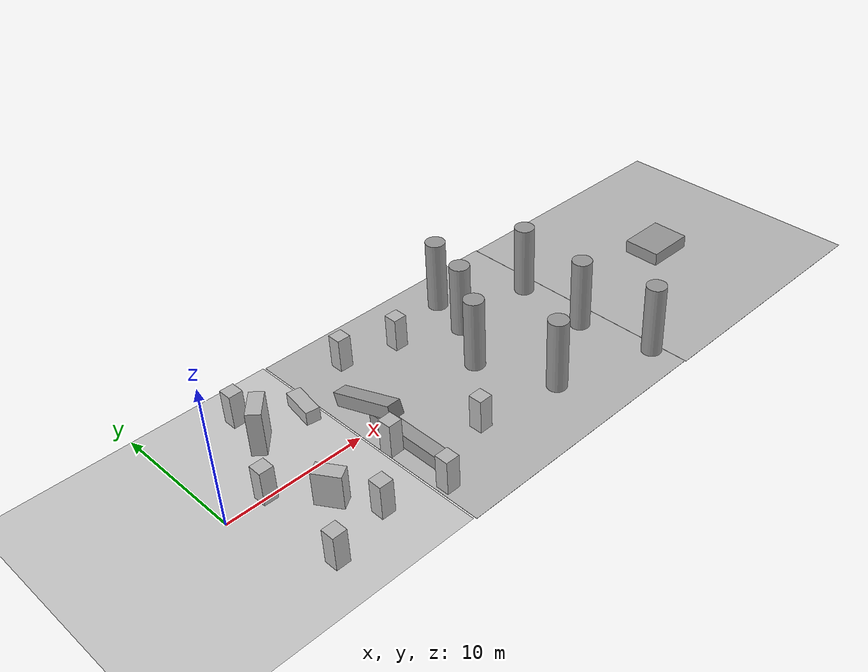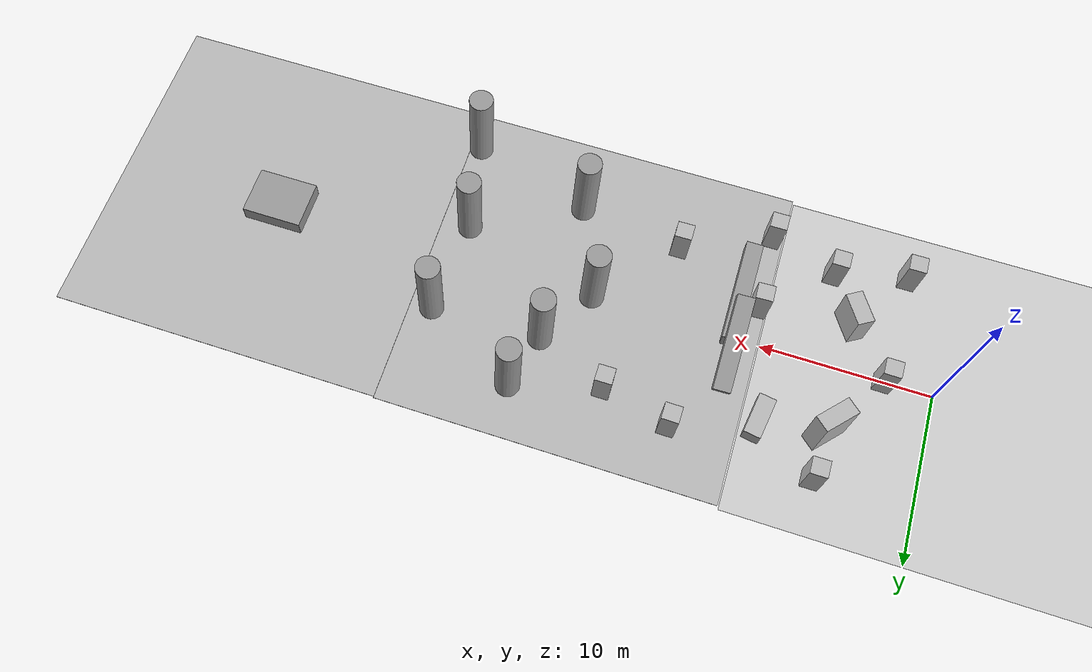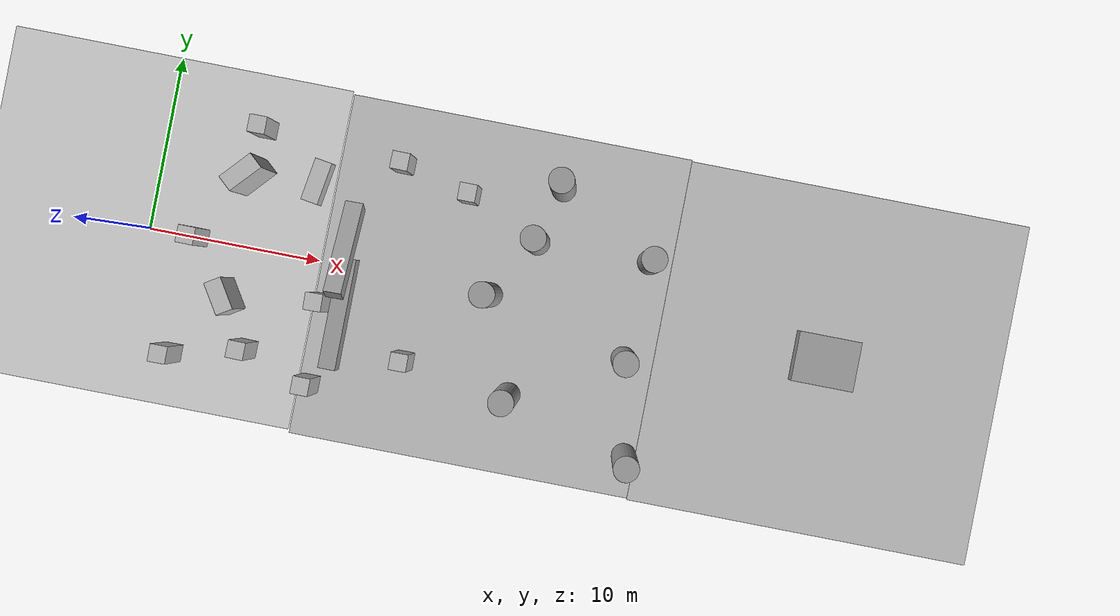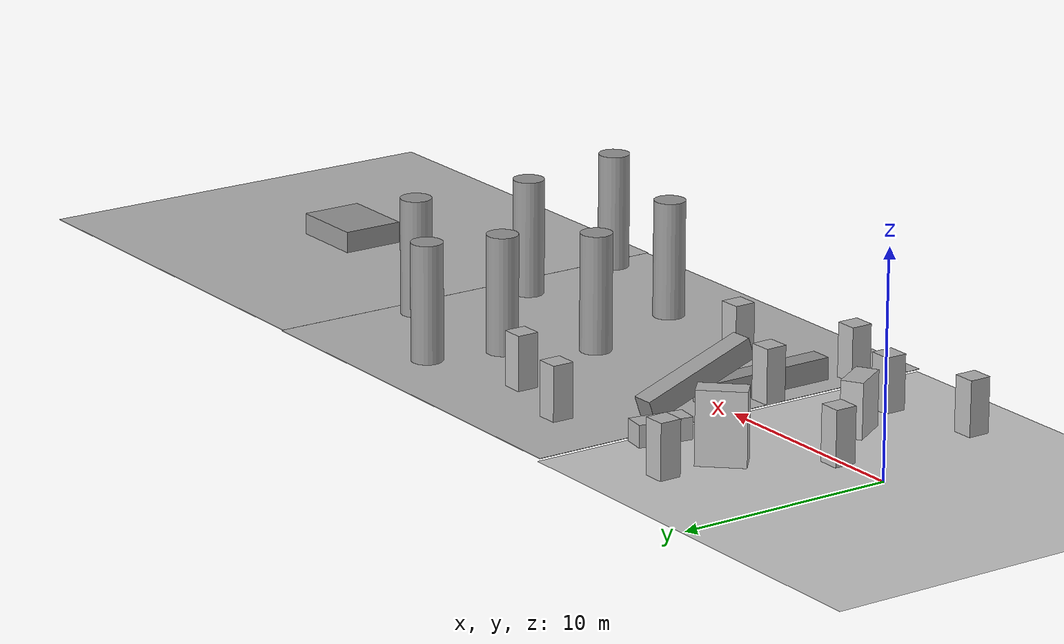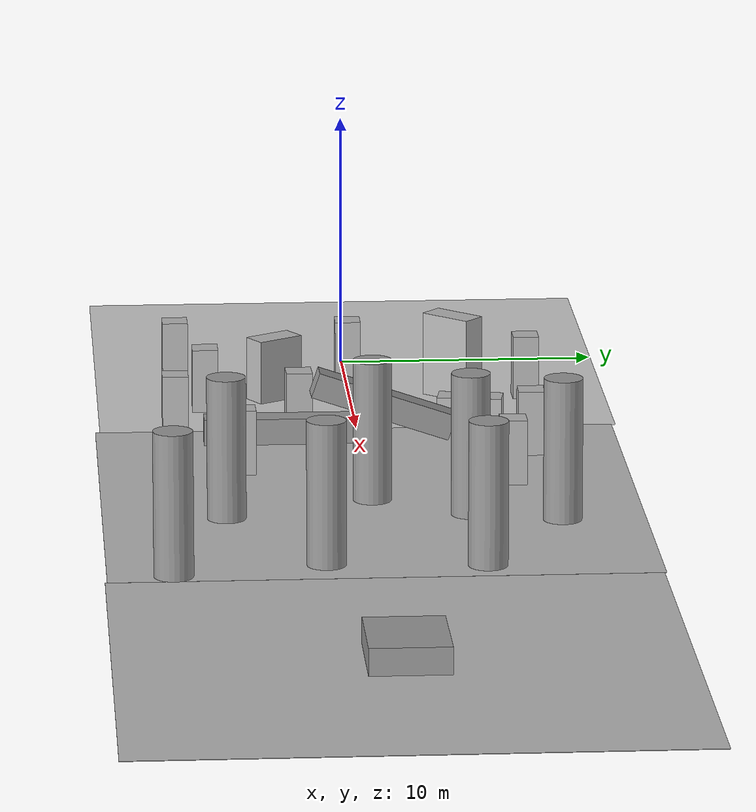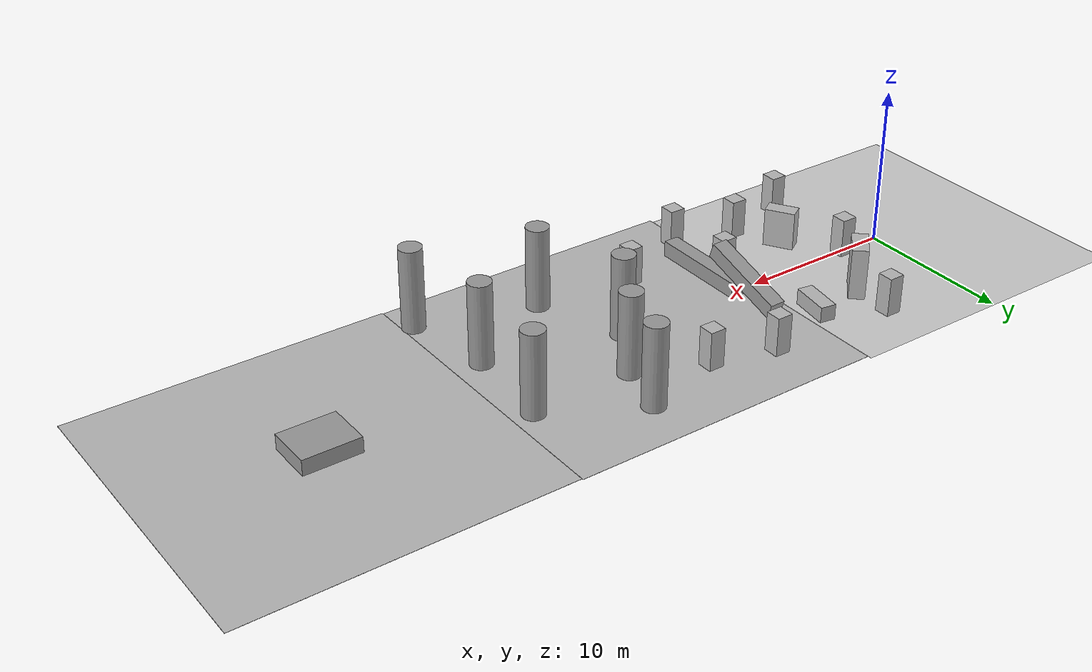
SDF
<sdf version="1.6">
 <world name="default">
  <light name="sun" type="directional">
   <pose>0 0 10 0 -0 0</pose>
   <diffuse>0.8 0.8 0.8 1</diffuse>
   <specular>0.2 0.2 0.2 1</specular>
   <attenuation>
    <range>1000</range>
    <constant>0.9</constant>
    <linear>0.01</linear>
    <quadratic>0.001</quadratic>
   </attenuation>
   <direction>-0.5 0.1 -0.9</direction>
  </light>
  <gravity>0 0 -9.8</gravity>
  <magnetic_field>6e-06 2.3e-05 -4.2e-05</magnetic_field>
  <atmosphere type="adiabatic"/>
  <physics name="default_physics" default="0" type="ode">
   <max_step_size>0.001</max_step_size>
   <real_time_factor>1</real_time_factor>
   <real_time_update_rate>1000</real_time_update_rate>
  </physics>
  <scene><ambient>0.4 0.4 0.4 1</ambient><background>0.7 0.7 0.7 1</background><shadows>1</shadows></scene>
  <audio><device>default</device></audio>
  <spherical_coordinates>
   <surface_model>EARTH_WGS84</surface_model>
   <latitude_deg>0</latitude_deg>
   <longitude_deg>0</longitude_deg>
   <elevation>0</elevation>
   <heading_deg>0</heading_deg>
  </spherical_coordinates>
  <model name="unit_box">
   <pose>9.16142 4.48585 0.499995 -1.5708 9e-06 -0.1566</pose>
   <link name="link">
    <inertial>
     <mass>1</mass>
     <inertia>
      <ixx>0.166667</ixx>
      <ixy>0</ixy>
      <ixz>0</ixz>
      <iyy>0.166667</iyy>
      <iyz>0</iyz>
      <izz>0.166667</izz>
     </inertia>
    </inertial>
    <collision name="collision"><geometry><box><size>1 1 2.5</size></box></geometry></collision>
    <visual name="visual">
     <geometry><box><size>1 1 2.5</size></box></geometry>
     <material>
      <script>
       <uri>file://media/materials/scripts/wallpaper.material</uri>
       <name>wallpaper/wallpaper24</name>
      </script>
     </material>
    </visual>
   </link>
  </model>
  <model name="unit_box_0">
   <pose>17.9589 5.41519 1.25 -1e-06 -0 0.000523</pose>
   <link name="link">
    <inertial>
     <mass>1</mass>
     <inertia>
      <ixx>0.166667</ixx>
      <ixy>0</ixy>
      <ixz>0</ixz>
      <iyy>0.166667</iyy>
      <iyz>0</iyz>
      <izz>0.166667</izz>
     </inertia>
    </inertial>
    <collision name="collision"><geometry><box><size>1 1 2.5</size></box></geometry></collision>
    <visual name="visual">
     <geometry><box><size>1 1 2.5</size></box></geometry>
     <material>
      <script>
       <uri>file://media/materials/scripts/wallpaper.material</uri>
       <name>wallpaper/wallpaper20</name>
      </script>
     </material>
    </visual>
   </link>
  </model>
  <model name="unit_box_2">
   <pose>15.9696 -4.65977 1.25 -1e-06 -1e-06 0.010237</pose>
   <link name="link">
    <inertial>
     <mass>1</mass>
     <inertia>
      <ixx>0.166667</ixx>
      <ixy>0</ixy>
      <ixz>0</ixz>
      <iyy>0.166667</iyy>
      <iyz>0</iyz>
      <izz>0.166667</izz>
     </inertia>
    </inertial>
    <collision name="collision"><geometry><box><size>1 1 2.5</size></box></geometry></collision>
    <visual name="visual">
     <geometry><box><size>1 1 2.5</size></box></geometry>
     <material>
      <script>
       <uri>file://media/materials/scripts/wallpaper.material</uri>
       <name>wallpaper/wallpaper28</name>
      </script>
     </material>
    </visual>
   </link>
  </model>
  <model name="unit_box_3">
   <pose>5.49743 4.06502 1.64767 2e-06 -0 -0.738651</pose>
   <link name="link">
    <inertial>
     <mass>1</mass>
     <inertia>
      <ixx>0.166667</ixx>
      <ixy>0</ixy>
      <ixz>0</ixz>
      <iyy>0.166667</iyy>
      <iyz>0</iyz>
      <izz>0.166667</izz>
     </inertia>
    </inertial>
    <collision name="collision"><geometry><box><size>1 2.17259 3.29535</size></box></geometry></collision>
    <visual name="visual">
     <geometry><box><size>1 2.17259 3.29535</size></box></geometry>
     <material>
      <script>
       <uri>file://media/materials/scripts/wallpaper.material</uri>
       <name>wallpaper/wallpaper18</name>
      </script>
     </material>
    </visual>
   </link>
  </model>
  <model name="unit_box_4">
   <pose>10.8278 -7.02763 1.25 -1e-06 0 -0.00394</pose>
   <link name="link">
    <inertial>
     <mass>1</mass>
     <inertia>
      <ixx>0.166667</ixx>
      <ixy>0</ixy>
      <ixz>0</ixz>
      <iyy>0.166667</iyy>
      <iyz>0</iyz>
      <izz>0.166667</izz>
     </inertia>
    </inertial>
    <collision name="collision"><geometry><box><size>1 1 2.5</size></box></geometry></collision>
    <visual name="visual">
     <geometry><box><size>1 1 2.5</size></box></geometry>
     <material>
      <script>
       <uri>file://media/materials/scripts/wallpaper.material</uri>
       <name>wallpaper/wallpaper17</name>
      </script>
     </material>
    </visual>
   </link>
  </model>
  <model name="unit_box_5">
   <pose>2.64178 -6.77712 1.25 2e-06 2e-06 0.003193</pose>
   <link name="link">
    <inertial>
     <mass>1</mass>
     <inertia>
      <ixx>0.166667</ixx>
      <ixy>0</ixy>
      <ixz>0</ixz>
      <iyy>0.166667</iyy>
      <iyz>0</iyz>
      <izz>0.166667</izz>
     </inertia>
    </inertial>
    <collision name="collision"><geometry><box><size>1 1 2.5</size></box></geometry></collision>
    <visual name="visual">
     <geometry><box><size>1 1 2.5</size></box></geometry>
     <material>
      <script>
       <uri>file://media/materials/scripts/wallpaper.material</uri>
       <name>wallpaper/wallpaper16</name>
      </script>
     </material>
    </visual>
   </link>
  </model>
  <model name="unit_box_6">
   <pose>5.36073 -2.95743 1.25 -1e-06 -0 0.554817</pose>
   <link name="link">
    <inertial>
     <mass>1</mass>
     <inertia>
      <ixx>0.166667</ixx>
      <ixy>0</ixy>
      <ixz>0</ixz>
      <iyy>0.166667</iyy>
      <iyz>0</iyz>
      <izz>0.166667</izz>
     </inertia>
    </inertial>
    <collision name="collision"><geometry><box><size>1 1.92239 2.5</size></box></geometry></collision>
    <visual name="visual">
     <geometry><box><size>1 1.92239 2.5</size></box></geometry>
     <material>
      <script>
       <uri>file://media/materials/scripts/wallpaper.material</uri>
       <name>wallpaper/wallpaper15</name>
      </script>
     </material>
    </visual>
   </link>
  </model>
  <model name="unit_box_7">
   <pose>6.8876 -5.73587 1.25 -1e-06 -0 -0.011149</pose>
   <link name="link">
    <inertial>
     <mass>1</mass>
     <inertia>
      <ixx>0.166667</ixx>
      <ixy>0</ixy>
      <ixz>0</ixz>
      <iyy>0.166667</iyy>
      <iyz>0</iyz>
      <izz>0.166667</izz>
     </inertia>
    </inertial>
    <collision name="collision"><geometry><box><size>1 1 2.5</size></box></geometry></collision>
    <visual name="visual">
     <geometry><box><size>1 1 2.5</size></box></geometry>
     <material>
      <script>
       <uri>file://media/materials/scripts/wallpaper.material</uri>
       <name>wallpaper/wallpaper14</name>
      </script>
     </material>
    </visual>
   </link>
  </model>
  <model name="unit_box_8">
   <pose>13.9139 6.4271 1.25 1e-06 -1e-06 -0.011625</pose>
   <link name="link">
    <inertial>
     <mass>1</mass>
     <inertia>
      <ixx>0.166667</ixx>
      <ixy>0</ixy>
      <ixz>0</ixz>
      <iyy>0.166667</iyy>
      <iyz>0</iyz>
      <izz>0.166667</izz>
     </inertia>
    </inertial>
    <collision name="collision"><geometry><box><size>1 1 2.5</size></box></geometry></collision>
    <visual name="visual">
     <geometry><box><size>1 1 2.5</size></box></geometry>
     <material>
      <script><uri>file://media/materials/scripts/wallpaper.material</uri><name>wallpaper/wallpaper6</name></script>
     </material>
    </visual>
   </link>
  </model>
  <model name="unit_box_9">
   <pose>5.66697 6.91712 1.25 -3e-06 0 0.002152</pose>
   <link name="link">
    <inertial>
     <mass>1</mass>
     <inertia>
      <ixx>0.166667</ixx>
      <ixy>0</ixy>
      <ixz>0</ixz>
      <iyy>0.166667</iyy>
      <iyz>0</iyz>
      <izz>0.166667</izz>
     </inertia>
    </inertial>
    <collision name="collision"><geometry><box><size>1 1 2.5</size></box></geometry></collision>
    <visual name="visual">
     <geometry><box><size>1 1 2.5</size></box></geometry>
     <material>
      <script>
       <uri>file://media/materials/scripts/wallpaper.material</uri>
       <name>wallpaper/wallpaper10</name>
      </script>
     </material>
    </visual>
   </link>
  </model>
  <model name="unit_box_10">
   <pose>2.90703 0.070606 1.25 0 1e-06 -0.009028</pose>
   <link name="link">
    <inertial>
     <mass>1</mass>
     <inertia>
      <ixx>0.166667</ixx>
      <ixy>0</ixy>
      <ixz>0</ixz>
      <iyy>0.166667</iyy>
      <iyz>0</iyz>
      <izz>0.166667</izz>
     </inertia>
    </inertial>
    <collision name="collision"><geometry><box><size>1 1 2.5</size></box></geometry></collision>
    <visual name="visual">
     <geometry><box><size>1 1 2.5</size></box></geometry>
     <material>
      <script>
       <uri>file://media/materials/scripts/wallpaper.material</uri>
       <name>wallpaper/wallpaper26</name>
      </script>
     </material>
    </visual>
   </link>
  </model>
  <model name="unit_box_11">
   <pose>10.6345 -2.26069 1.25 0 -0 0.026313</pose>
   <link name="link">
    <inertial>
     <mass>1</mass>
     <inertia>
      <ixx>0.166667</ixx>
      <ixy>0</ixy>
      <ixz>0</ixz>
      <iyy>0.166667</iyy>
      <iyz>0</iyz>
      <izz>0.166667</izz>
     </inertia>
    </inertial>
    <collision name="collision"><geometry><box><size>1 1 2.5</size></box></geometry></collision>
    <visual name="visual">
     <geometry><box><size>1 1 2.5</size></box></geometry>
     <material>
      <script>
       <uri>file://media/materials/scripts/wallpaper.material</uri>
       <name>wallpaper/wallpaper25</name>
      </script>
     </material>
    </visual>
   </link>
  </model>
  <model name="ground20x60">
   <model name="my_ground_plane">
    <static>1</static>
    <link name="link">
     <collision name="collision">
      <geometry><plane><normal>0 0 1</normal><size>20 20</size></plane></geometry>
      <surface><friction><ode><mu>100</mu><mu2>50</mu2></ode></friction></surface>
     </collision>
     <visual name="visual">
      <cast_shadows>0</cast_shadows>
      <geometry><plane><normal>0 0 1</normal><size>20 20</size></plane></geometry>
      <material>
       <script>
        <uri>model://ground20x20/materials/scripts</uri>
        <uri>model://ground20x20/materials/textures</uri>
        <name>WoodGround/Image</name>
       </script>
      </material>
     </visual>
    </link>
    <pose>-20.0603 0.142959 0 0 -0 0</pose>
   </model>
   <model name="my_ground_plane_0">
    <static>1</static>
    <link name="link">
     <collision name="collision">
      <geometry><plane><normal>0 0 1</normal><size>20 20</size></plane></geometry>
      <surface><friction><ode><mu>100</mu><mu2>50</mu2></ode></friction></surface>
     </collision>
     <visual name="visual">
      <cast_shadows>0</cast_shadows>
      <geometry><plane><normal>0 0 1</normal><size>20 20</size></plane></geometry>
      <material>
       <script>
        <uri>model://ground20x20/materials/scripts</uri>
        <uri>model://ground20x20/materials/textures</uri>
        <name>WoodGround/Image</name>
       </script>
      </material>
     </visual>
    </link>
    <pose>0.026452 -0.032681 0 0 -0 0</pose>
   </model>
   <model name="my_ground_plane_1">
    <static>1</static>
    <link name="link">
     <collision name="collision">
      <geometry><plane><normal>0 0 1</normal><size>20 20</size></plane></geometry>
      <surface><friction><ode><mu>100</mu><mu2>50</mu2></ode></friction></surface>
     </collision>
     <visual name="visual">
      <cast_shadows>0</cast_shadows>
      <geometry><plane><normal>0 0 1</normal><size>20 20</size></plane></geometry>
      <material>
       <script>
        <uri>model://ground20x20/materials/scripts</uri>
        <uri>model://ground20x20/materials/textures</uri>
        <name>WoodGround/Image</name>
       </script>
      </material>
     </visual>
    </link>
    <pose>20.0339 -0.110278 0 0 -0 0</pose>
   </model>
   <static>0</static>
   <pose>20.1149 -0.064726 0 0 -0 0</pose>
  </model>
  <model name="unit_box_12">
   <pose>11.7669 -2.73623 0.504379 -0.002054 -1e-06 -0.000346</pose>
   <link name="unit_box_12::link">
    <inertial>
     <mass>1</mass>
     <inertia>
      <ixx>0.166667</ixx>
      <ixy>0</ixy>
      <ixz>0</ixz>
      <iyy>0.166667</iyy>
      <iyz>0</iyz>
      <izz>0.166667</izz>
     </inertia>
    </inertial>
    <collision name="collision"><geometry><box><size>1 6.46057 1.02202</size></box></geometry></collision>
    <visual name="visual">
     <geometry><box><size>1 6.46057 1.02202</size></box></geometry>
     <material>
      <script><name>Gazebo/Grey</name><uri>file://media/materials/scripts/gazebo.material</uri></script>
     </material>
    </visual>
    <kinematic>1</kinematic>
   </link>
  </model>
  <model name="unit_box_12_clone">
   <pose>11.5781 0.938797 1.3845 -1.54995 -1.2382 1.57045</pose>
   <link name="link">
    <inertial>
     <mass>1</mass>
     <inertia>
      <ixx>0.166667</ixx>
      <ixy>0</ixy>
      <ixz>0</ixz>
      <iyy>0.166667</iyy>
      <iyz>0</iyz>
      <izz>0.166667</izz>
     </inertia>
    </inertial>
    <collision name="collision"><geometry><box><size>1 5.56586 1.02202</size></box></geometry></collision>
    <visual name="visual">
     <geometry><box><size>1 5.56586 1.02202</size></box></geometry>
     <material>
      <script><name>Gazebo/Grey</name><uri>file://media/materials/scripts/gazebo.material</uri></script>
     </material>
    </visual>
   </link>
  </model>
  <model name="unit_cylinder">
   <pose>23.1462 6.80523 2.69641 0 -0 0.000296</pose>
   <link name="link">
    <inertial>
     <mass>1</mass>
     <inertia><ixx>0.145833</ixx><ixy>0</ixy><ixz>0</ixz><iyy>0.145833</iyy><iyz>0</iyz><izz>0.125</izz></inertia>
    </inertial>
    <collision name="collision">
     <geometry><cylinder><radius>0.720337</radius><length>5.39282</length></cylinder></geometry>
    </collision>
    <visual name="visual">
     <geometry><cylinder><radius>0.720337</radius><length>5.39282</length></cylinder></geometry>
     <material>
      <script><name>Gazebo/Grey</name><uri>file://media/materials/scripts/gazebo.material</uri></script>
     </material>
    </visual>
   </link>
  </model>
  <model name="unit_cylinder_clone">
   <pose>22.2148 -5.5145 2.69641 0 -0 0.000169</pose>
   <link name="link">
    <inertial>
     <mass>1</mass>
     <inertia><ixx>0.145833</ixx><ixy>0</ixy><ixz>0</ixz><iyy>0.145833</iyy><iyz>0</iyz><izz>0.125</izz></inertia>
    </inertial>
    <collision name="collision">
     <geometry><cylinder><radius>0.720339</radius><length>5.39283</length></cylinder></geometry>
    </collision>
    <visual name="visual">
     <geometry><cylinder><radius>0.720339</radius><length>5.39283</length></cylinder></geometry>
     <material>
      <script><name>Gazebo/Grey</name><uri>file://media/materials/scripts/gazebo.material</uri></script>
     </material>
    </visual>
   </link>
  </model>
  <model name="unit_cylinder_clone_0">
   <pose>20.1076 -0.014513 2.69641 0 -0 0.000269</pose>
   <link name="link">
    <inertial>
     <mass>1</mass>
     <inertia><ixx>0.145833</ixx><ixy>0</ixy><ixz>0</ixz><iyy>0.145833</iyy><iyz>0</iyz><izz>0.125</izz></inertia>
    </inertial>
    <collision name="collision">
     <geometry><cylinder><radius>0.720339</radius><length>5.39283</length></cylinder></geometry>
    </collision>
    <visual name="visual">
     <geometry><cylinder><radius>0.720339</radius><length>5.39283</length></cylinder></geometry>
     <material>
      <script><name>Gazebo/Grey</name><uri>file://media/materials/scripts/gazebo.material</uri></script>
     </material>
    </visual>
   </link>
  </model>
  <model name="unit_cylinder_clone_1">
   <pose>28.3955 -2.18148 2.69641 0 -0 0.000202</pose>
   <link name="link">
    <inertial>
     <mass>1</mass>
     <inertia><ixx>0.145833</ixx><ixy>0</ixy><ixz>0</ixz><iyy>0.145833</iyy><iyz>0</iyz><izz>0.125</izz></inertia>
    </inertial>
    <collision name="collision">
     <geometry><cylinder><radius>0.720339</radius><length>5.39283</length></cylinder></geometry>
    </collision>
    <visual name="visual">
     <geometry><cylinder><radius>0.720339</radius><length>5.39283</length></cylinder></geometry>
     <material>
      <script><name>Gazebo/Grey</name><uri>file://media/materials/scripts/gazebo.material</uri></script>
     </material>
    </visual>
   </link>
  </model>
  <model name="unit_cylinder_clone_2">
   <pose>28.8384 3.59744 2.69641 0 -0 0.000232</pose>
   <link name="link">
    <inertial>
     <mass>1</mass>
     <inertia><ixx>0.145833</ixx><ixy>0</ixy><ixz>0</ixz><iyy>0.145833</iyy><iyz>0</iyz><izz>0.125</izz></inertia>
    </inertial>
    <collision name="collision">
     <geometry><cylinder><radius>0.720339</radius><length>5.39283</length></cylinder></geometry>
    </collision>
    <visual name="visual">
     <geometry><cylinder><radius>0.720339</radius><length>5.39283</length></cylinder></geometry>
     <material>
      <script><name>Gazebo/Grey</name><uri>file://media/materials/scripts/gazebo.material</uri></script>
     </material>
    </visual>
   </link>
  </model>
  <model name="unit_box_1">
   <pose>39.8361 -0.069501 0.499858 -9.9e-05 -0 0</pose>
   <link name="link">
    <inertial>
     <mass>1</mass>
     <inertia>
      <ixx>0.166667</ixx>
      <ixy>0</ixy>
      <ixz>0</ixz>
      <iyy>0.166667</iyy>
      <iyz>0</iyz>
      <izz>0.166667</izz>
     </inertia>
    </inertial>
    <collision name="collision"><geometry><box><size>3.61697 2.8855 1</size></box></geometry></collision>
    <visual name="visual">
     <geometry><box><size>3.61697 2.8855 1</size></box></geometry>
     <material>
      <script><name>Gazebo/Grey</name><uri>file://media/materials/scripts/gazebo.material</uri></script>
     </material>
    </visual>
   </link>
  </model>
  <model name="unit_cylinder_clone_0_clone">
   <pose>29.4865 -7.70087 2.69641 0 -0 0.000269</pose>
   <link name="link">
    <inertial>
     <mass>1</mass>
     <inertia><ixx>0.145833</ixx><ixy>0</ixy><ixz>0</ixz><iyy>0.145833</iyy><iyz>0</iyz><izz>0.125</izz></inertia>
    </inertial>
    <collision name="collision">
     <geometry><cylinder><radius>0.720339</radius><length>5.39283</length></cylinder></geometry>
    </collision>
    <visual name="visual">
     <geometry><cylinder><radius>0.720339</radius><length>5.39283</length></cylinder></geometry>
     <material>
      <script><name>Gazebo/Grey</name><uri>file://media/materials/scripts/gazebo.material</uri></script>
     </material>
    </visual>
   </link>
  </model>
  <model name="unit_cylinder_clone_0_clone_0">
   <pose>22.2437 3.47322 2.69641 0 -0 0.000275</pose>
   <link name="link">
    <inertial>
     <mass>1</mass>
     <inertia><ixx>0.145833</ixx><ixy>0</ixy><ixz>0</ixz><iyy>0.145833</iyy><iyz>0</iyz><izz>0.125</izz></inertia>
    </inertial>
    <collision name="collision">
     <geometry><cylinder><radius>0.720339</radius><length>5.39283</length></cylinder></geometry>
    </collision>
    <visual name="visual">
     <geometry><cylinder><radius>0.720339</radius><length>5.39283</length></cylinder></geometry>
     <material>
      <script><name>Gazebo/Grey</name><uri>file://media/materials/scripts/gazebo.material</uri></script>
     </material>
    </visual>
   </link>
  </model>
 </world>
</sdf>
